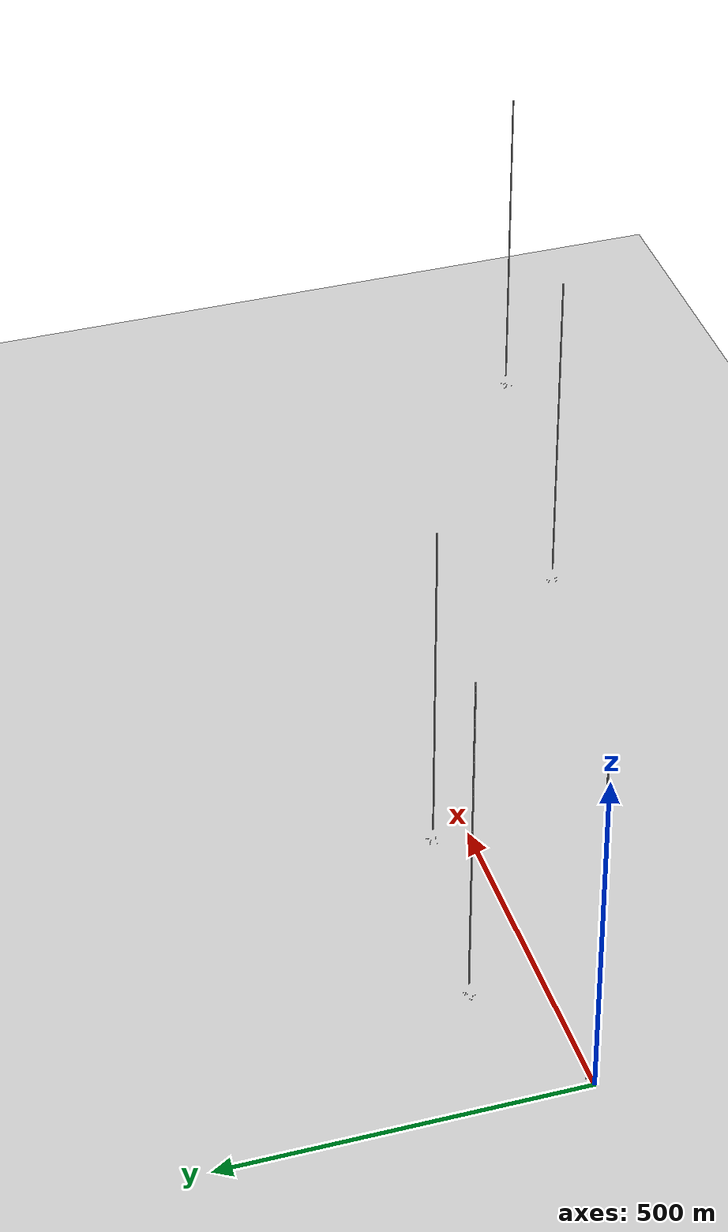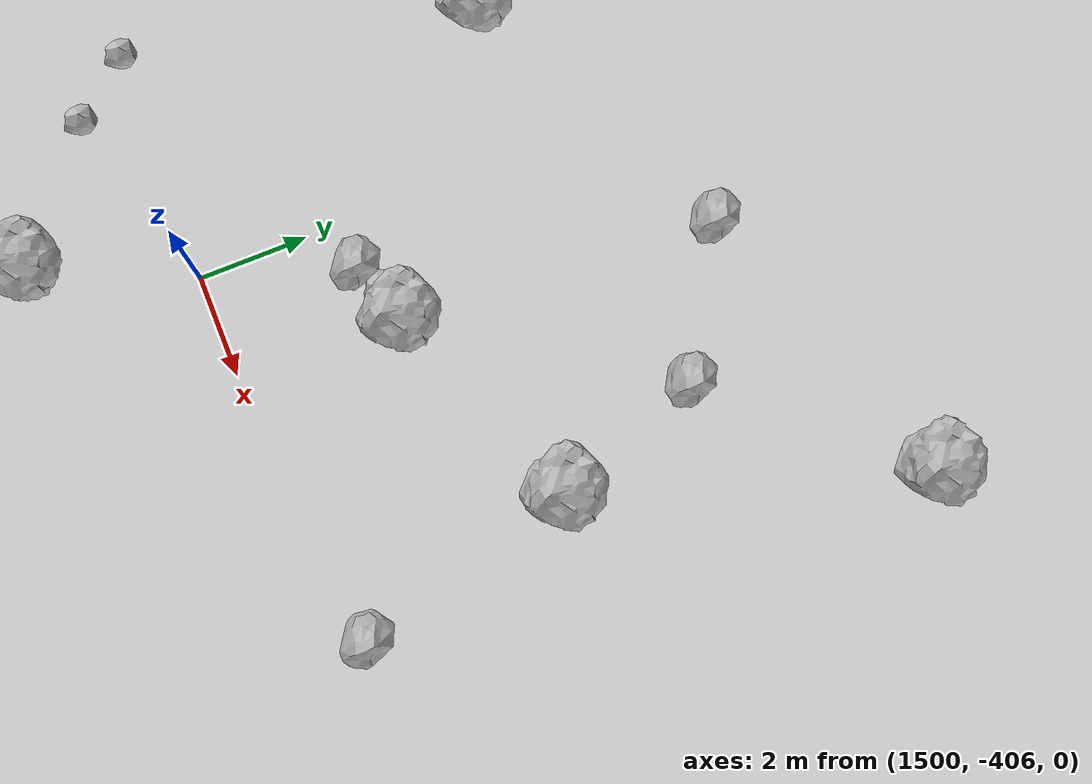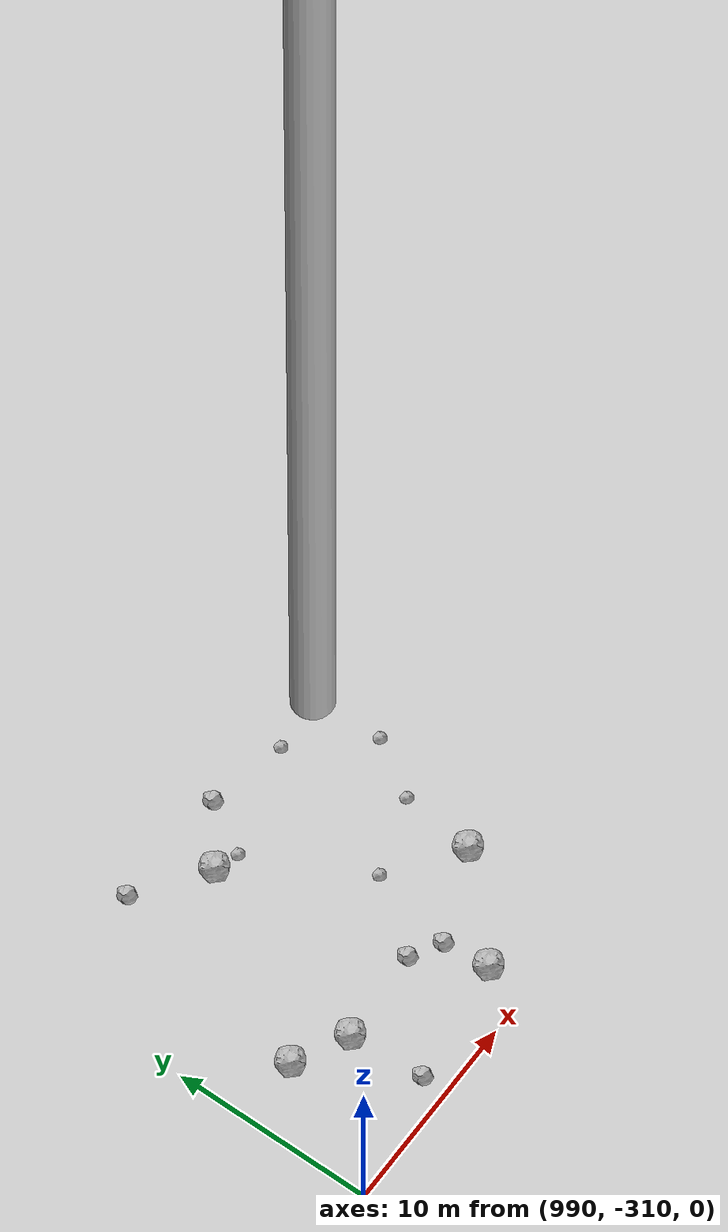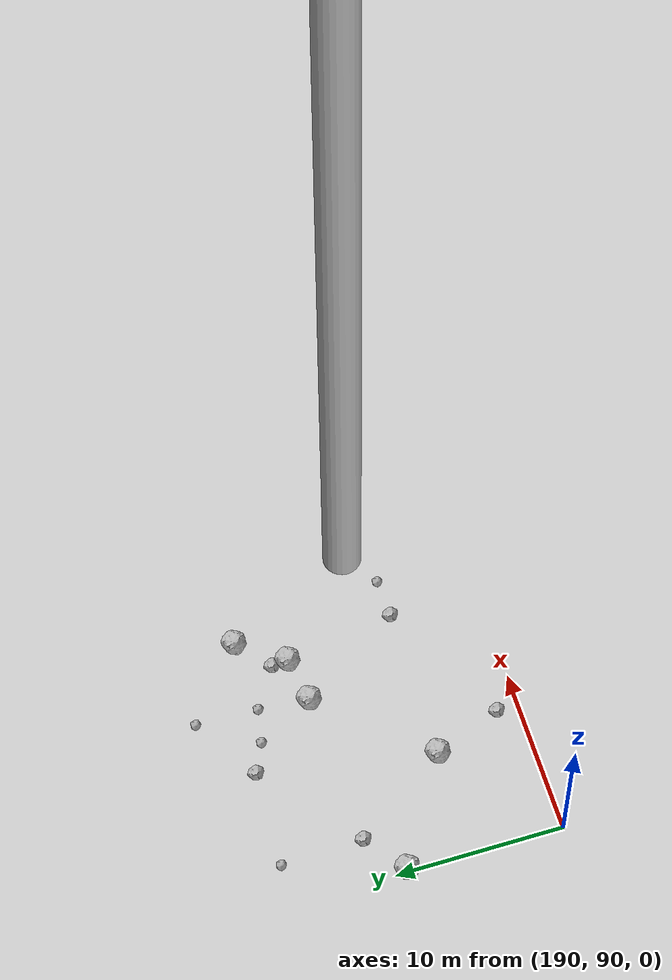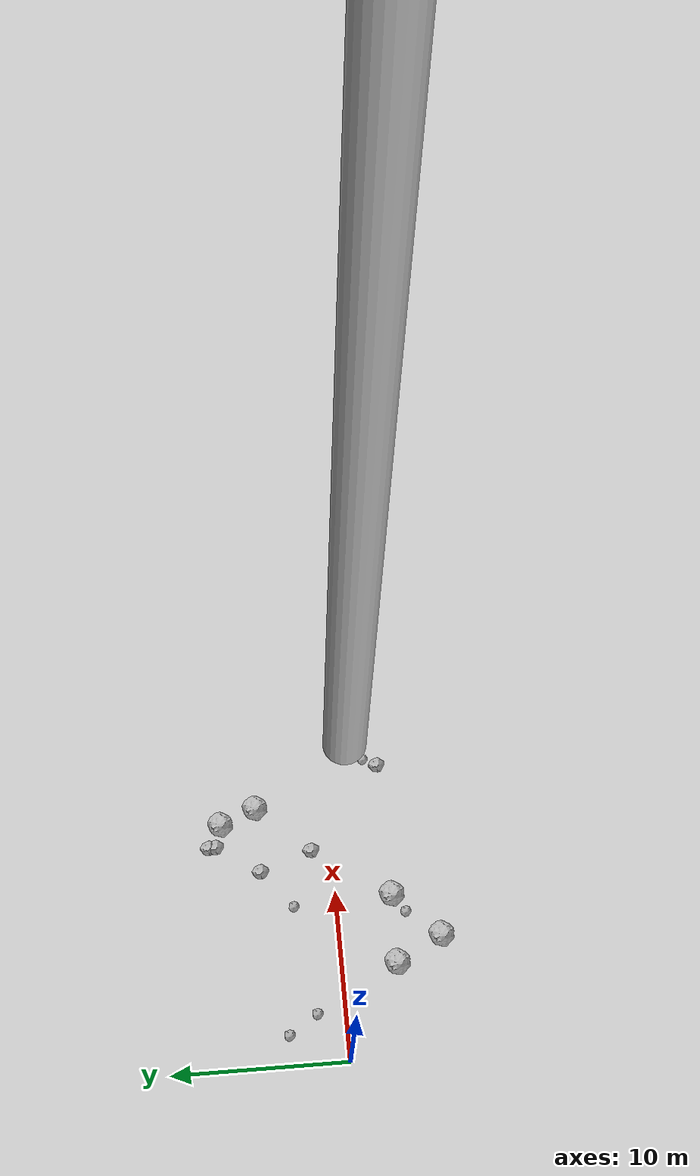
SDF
<?xml version="1.0" ?>
<sdf version="1.6">
  <world name="default">

    <include>
      <uri>model://custom_ground</uri>
    </include>

    <include>
      <uri>model://sun</uri>
    </include>

    <spherical_coordinates>
      <surface_model>EARTH_WGS84</surface_model>
      <latitude_deg>38.161479</latitude_deg>
      <longitude_deg>-122.454630</longitude_deg>
      <elevation>488.0</elevation>
      <heading_deg>90</heading_deg>
    </spherical_coordinates>

    <model name="rock1_0_0">
      <include>
        <uri>model://rock1</uri>
        <pose>6.874993899344233 -5.798928149861309 0.5 0 0 0</pose>
      </include>
    </model>
    <model name="rock1_0_1">
      <include>
        <uri>model://rock1</uri>
        <pose>14.53478975635541 6.452123087397407 0.5 0 0 0</pose>
      </include>
    </model>
    <model name="rock1_0_2">
      <include>
        <uri>model://rock1</uri>
        <pose>5.432593055438839 -3.120534153947558 0.5 0 0 0</pose>
      </include>
    </model>
    <model name="rock1_0_3">
      <include>
        <uri>model://rock1</uri>
        <pose>15.437798759536083 4.3580750712431495 0.5 0 0 0</pose>
      </include>
    </model>
    <model name="rock1_0_4">
      <include>
        <uri>model://rock1</uri>
        <pose>9.494322033842042 -3.21328302534178 0.5 0 0 0</pose>
      </include>
    </model>
    <model name="rock2_0_0">
      <include>
        <uri>model://rock2</uri>
        <pose>13.15159978584597 7.222753185432055 0.3 0 0 0</pose>
      </include>
    </model>
    <model name="rock2_0_1">
      <include>
        <uri>model://rock2</uri>
        <pose>11.456423304244526 4.2664020613207505 0.3 0 0 0</pose>
      </include>
    </model>
    <model name="rock2_0_2">
      <include>
        <uri>model://rock2</uri>
        <pose>13.18285730199162 6.814760559990315 0.3 0 0 0</pose>
      </include>
    </model>
    <model name="rock2_0_3">
      <include>
        <uri>model://rock2</uri>
        <pose>12.564167683776699 1.2208459028298932 0.3 0 0 0</pose>
      </include>
    </model>
    <model name="rock2_0_4">
      <include>
        <uri>model://rock2</uri>
        <pose>17.752834963854426 -3.155375478628506 0.3 0 0 0</pose>
      </include>
    </model>
    <model name="rock3_0_0">
      <include>
        <uri>model://rock3</uri>
        <pose>2.805865332415851 1.5994187662515387 0.2 0 0 0</pose>
      </include>
    </model>
    <model name="rock3_0_1">
      <include>
        <uri>model://rock3</uri>
        <pose>18.196208178430574 -2.385392910425976 0.2 0 0 0</pose>
      </include>
    </model>
    <model name="rock3_0_2">
      <include>
        <uri>model://rock3</uri>
        <pose>1.7177478214862596 3.2429719250795497 0.2 0 0 0</pose>
      </include>
    </model>
    <model name="rock3_0_3">
      <include>
        <uri>model://rock3</uri>
        <pose>9.179652493017043 2.4561768592707995 0.2 0 0 0</pose>
      </include>
    </model>
    <model name="rock3_0_4">
      <include>
        <uri>model://rock3</uri>
        <pose>8.418333932414608 -3.9669121643664713 0.2 0 0 0</pose>
      </include>
    </model>
    <model name="rock1_1_0">
      <include>
        <uri>model://rock1</uri>
        <pose>196.4979247313359 95.4528687213353 0.5 0 0 0</pose>
      </include>
    </model>
    <model name="rock1_1_1">
      <include>
        <uri>model://rock1</uri>
        <pose>206.68880858206077 104.7228990108667 0.5 0 0 0</pose>
      </include>
    </model>
    <model name="rock1_1_2">
      <include>
        <uri>model://rock1</uri>
        <pose>201.9424680282782 101.54483244536883 0.5 0 0 0</pose>
      </include>
    </model>
    <model name="rock1_1_3">
      <include>
        <uri>model://rock1</uri>
        <pose>190.19164571219048 99.29750216157731 0.5 0 0 0</pose>
      </include>
    </model>
    <model name="rock1_1_4">
      <include>
        <uri>model://rock1</uri>
        <pose>204.72165485293468 102.01752589914304 0.5 0 0 0</pose>
      </include>
    </model>
    <model name="rock2_1_0">
      <include>
        <uri>model://rock2</uri>
        <pose>204.65019012514105 102.98630408742545 0.3 0 0 0</pose>
      </include>
    </model>
    <model name="rock2_1_1">
      <include>
        <uri>model://rock2</uri>
        <pose>198.01680926727153 91.34893016027593 0.3 0 0 0</pose>
      </include>
    </model>
    <model name="rock2_1_2">
      <include>
        <uri>model://rock2</uri>
        <pose>205.7907785542524 95.37160491281348 0.3 0 0 0</pose>
      </include>
    </model>
    <model name="rock2_1_3">
      <include>
        <uri>model://rock2</uri>
        <pose>192.6221286793998 101.12991230607929 0.3 0 0 0</pose>
      </include>
    </model>
    <model name="rock2_1_4">
      <include>
        <uri>model://rock2</uri>
        <pose>198.34490462319266 105.79464779645794 0.3 0 0 0</pose>
      </include>
    </model>
    <model name="rock3_1_0">
      <include>
        <uri>model://rock3</uri>
        <pose>200.0911170089296 104.92587518577191 0.2 0 0 0</pose>
      </include>
    </model>
    <model name="rock3_1_1">
      <include>
        <uri>model://rock3</uri>
        <pose>202.18308817460522 104.512834790218 0.2 0 0 0</pose>
      </include>
    </model>
    <model name="rock3_1_2">
      <include>
        <uri>model://rock3</uri>
        <pose>202.27983063271247 108.2463621036266 0.2 0 0 0</pose>
      </include>
    </model>
    <model name="rock3_1_3">
      <include>
        <uri>model://rock3</uri>
        <pose>192.4730395770218 105.98105176208362 0.2 0 0 0</pose>
      </include>
    </model>
    <model name="rock3_1_4">
      <include>
        <uri>model://rock3</uri>
        <pose>208.13301106774085 95.41007239345609 0.2 0 0 0</pose>
      </include>
    </model>
    <model name="rock1_2_0">
      <include>
        <uri>model://rock1</uri>
        <pose>505.2858084734786 44.50686437443466 0.5 0 0 0</pose>
      </include>
    </model>
    <model name="rock1_2_1">
      <include>
        <uri>model://rock1</uri>
        <pose>492.4348211112001 55.984048006433056 0.5 0 0 0</pose>
      </include>
    </model>
    <model name="rock1_2_2">
      <include>
        <uri>model://rock1</uri>
        <pose>505.6448524317413 58.00694851223411 0.5 0 0 0</pose>
      </include>
    </model>
    <model name="rock1_2_3">
      <include>
        <uri>model://rock1</uri>
        <pose>504.8690009968793 55.22718889893515 0.5 0 0 0</pose>
      </include>
    </model>
    <model name="rock1_2_4">
      <include>
        <uri>model://rock1</uri>
        <pose>497.26550118257967 54.75990223633545 0.5 0 0 0</pose>
      </include>
    </model>
    <model name="rock2_2_0">
      <include>
        <uri>model://rock2</uri>
        <pose>502.5571688529093 43.76138865735284 0.3 0 0 0</pose>
      </include>
    </model>
    <model name="rock2_2_1">
      <include>
        <uri>model://rock2</uri>
        <pose>502.289429504602 44.97112258102818 0.3 0 0 0</pose>
      </include>
    </model>
    <model name="rock2_2_2">
      <include>
        <uri>model://rock2</uri>
        <pose>496.12535677141 45.282678879287246 0.3 0 0 0</pose>
      </include>
    </model>
    <model name="rock2_2_3">
      <include>
        <uri>model://rock2</uri>
        <pose>491.73954905690476 46.489214102153305 0.3 0 0 0</pose>
      </include>
    </model>
    <model name="rock2_2_4">
      <include>
        <uri>model://rock2</uri>
        <pose>500.58856963117955 52.6120084960436 0.3 0 0 0</pose>
      </include>
    </model>
    <model name="rock3_2_0">
      <include>
        <uri>model://rock3</uri>
        <pose>495.34221013147095 55.09065315836624 0.2 0 0 0</pose>
      </include>
    </model>
    <model name="rock3_2_1">
      <include>
        <uri>model://rock3</uri>
        <pose>494.2122795148677 42.6284844813059 0.2 0 0 0</pose>
      </include>
    </model>
    <model name="rock3_2_2">
      <include>
        <uri>model://rock3</uri>
        <pose>500.0503186122869 45.12096305574341 0.2 0 0 0</pose>
      </include>
    </model>
    <model name="rock3_2_3">
      <include>
        <uri>model://rock3</uri>
        <pose>505.62899558297005 52.381978928212675 0.2 0 0 0</pose>
      </include>
    </model>
    <model name="rock3_2_4">
      <include>
        <uri>model://rock3</uri>
        <pose>505.49888075017583 52.996129376352734 0.2 0 0 0</pose>
      </include>
    </model>
    <model name="rock1_3_0">
      <include>
        <uri>model://rock1</uri>
        <pose>1002.3776141086838 -307.9213976641278 0.5 0 0 0</pose>
      </include>
    </model>
    <model name="rock1_3_1">
      <include>
        <uri>model://rock1</uri>
        <pose>1006.6821950683056 -303.7081924381964 0.5 0 0 0</pose>
      </include>
    </model>
    <model name="rock1_3_2">
      <include>
        <uri>model://rock1</uri>
        <pose>999.1387145817621 -295.14361535959 0.5 0 0 0</pose>
      </include>
    </model>
    <model name="rock1_3_3">
      <include>
        <uri>model://rock1</uri>
        <pose>993.3114622357806 -303.6295642221579 0.5 0 0 0</pose>
      </include>
    </model>
    <model name="rock1_3_4">
      <include>
        <uri>model://rock1</uri>
        <pose>995.9755016080178 -304.97074063346923 0.5 0 0 0</pose>
      </include>
    </model>
    <model name="rock2_3_0">
      <include>
        <uri>model://rock2</uri>
        <pose>1000.6425812196265 -304.6795307558219 0.3 0 0 0</pose>
      </include>
    </model>
    <model name="rock2_3_1">
      <include>
        <uri>model://rock2</uri>
        <pose>996.2212819666613 -308.69870748376104 0.3 0 0 0</pose>
      </include>
    </model>
    <model name="rock2_3_2">
      <include>
        <uri>model://rock2</uri>
        <pose>995.7443552535849 -292.74376430067053 0.3 0 0 0</pose>
      </include>
    </model>
    <model name="rock2_3_3">
      <include>
        <uri>model://rock2</uri>
        <pose>1002.1536299337869 -305.56507679728935 0.3 0 0 0</pose>
      </include>
    </model>
    <model name="rock2_3_4">
      <include>
        <uri>model://rock2</uri>
        <pose>1001.8600829019306 -293.0021803971366 0.3 0 0 0</pose>
      </include>
    </model>
    <model name="rock3_3_0">
      <include>
        <uri>model://rock3</uri>
        <pose>1003.2281955248495 -301.2845239160505 0.2 0 0 0</pose>
      </include>
    </model>
    <model name="rock3_3_1">
      <include>
        <uri>model://rock3</uri>
        <pose>1005.874772876746 -293.87576660761596 0.2 0 0 0</pose>
      </include>
    </model>
    <model name="rock3_3_2">
      <include>
        <uri>model://rock3</uri>
        <pose>1008.8779543923442 -297.2115399626744 0.2 0 0 0</pose>
      </include>
    </model>
    <model name="rock3_3_3">
      <include>
        <uri>model://rock3</uri>
        <pose>1000.33608704145 -295.54865993592637 0.2 0 0 0</pose>
      </include>
    </model>
    <model name="rock3_3_4">
      <include>
        <uri>model://rock3</uri>
        <pose>1007.1118919755658 -299.97955170596913 0.2 0 0 0</pose>
      </include>
    </model>
    <model name="rock1_4_0">
      <include>
        <uri>model://rock1</uri>
        <pose>1498.7198393113451 -408.76003661832937 0.5 0 0 0</pose>
      </include>
    </model>
    <model name="rock1_4_1">
      <include>
        <uri>model://rock1</uri>
        <pose>1506.3073071504566 -401.60606641711104 0.5 0 0 0</pose>
      </include>
    </model>
    <model name="rock1_4_2">
      <include>
        <uri>model://rock1</uri>
        <pose>1508.449241325373 -395.64487298660816 0.5 0 0 0</pose>
      </include>
    </model>
    <model name="rock1_4_3">
      <include>
        <uri>model://rock1</uri>
        <pose>1502.2662866937287 -403.00085018423556 0.5 0 0 0</pose>
      </include>
    </model>
    <model name="rock1_4_4">
      <include>
        <uri>model://rock1</uri>
        <pose>1496.8607183198055 -399.36768395050035 0.5 0 0 0</pose>
      </include>
    </model>
    <model name="rock2_4_0">
      <include>
        <uri>model://rock2</uri>
        <pose>1507.2455467360599 -405.52077875649354 0.3 0 0 0</pose>
      </include>
    </model>
    <model name="rock2_4_1">
      <include>
        <uri>model://rock2</uri>
        <pose>1505.3128380344783 -398.82052335927347 0.3 0 0 0</pose>
      </include>
    </model>
    <model name="rock2_4_2">
      <include>
        <uri>model://rock2</uri>
        <pose>1500.9478836370483 -403.36251975534765 0.3 0 0 0</pose>
      </include>
    </model>
    <model name="rock2_4_3">
      <include>
        <uri>model://rock2</uri>
        <pose>1502.6838258107878 -397.12397037596213 0.3 0 0 0</pose>
      </include>
    </model>
    <model name="rock2_4_4">
      <include>
        <uri>model://rock2</uri>
        <pose>1498.064264032749 -409.49977147142283 0.3 0 0 0</pose>
      </include>
    </model>
    <model name="rock3_4_0">
      <include>
        <uri>model://rock3</uri>
        <pose>1495.1383733070768 -405.92354538297116 0.2 0 0 0</pose>
      </include>
    </model>
    <model name="rock3_4_1">
      <include>
        <uri>model://rock3</uri>
        <pose>1496.1765030642991 -407.0276635481058 0.2 0 0 0</pose>
      </include>
    </model>
    <model name="rock3_4_2">
      <include>
        <uri>model://rock3</uri>
        <pose>1495.174865528372 -396.31234493424046 0.2 0 0 0</pose>
      </include>
    </model>
    <model name="rock3_4_3">
      <include>
        <uri>model://rock3</uri>
        <pose>1495.2995699202957 -396.3342045454257 0.2 0 0 0</pose>
      </include>
    </model>
    <model name="rock3_4_4">
      <include>
        <uri>model://rock3</uri>
        <pose>1501.5048404991323 -403.13269041482323 0.2 0 0 0</pose>
      </include>
    </model>

    <model name="cylinder_1">
      <static>true</static>
      <link name="link">
        <visual name="visual">
          <geometry>
            <cylinder>
              <radius>1</radius>
              <length>500</length>
            </cylinder>
          </geometry>
        </visual>
      </link>
      <pose>10 0 270 0 0 0</pose>
    </model>

    <model name="cylinder_2">
      <static>true</static>
      <link name="link">
        <visual name="visual">
          <geometry>
            <cylinder>
              <radius>1</radius>
              <length>500</length>
            </cylinder>
          </geometry>
        </visual>
      </link>
      <pose>200 100 270 0 0 0</pose>
    </model>

    <model name="cylinder_3">
      <static>true</static>
      <link name="link">
        <visual name="visual">
          <geometry>
            <cylinder>
              <radius>1</radius>
              <length>500</length>
            </cylinder>
          </geometry>
        </visual>
      </link>
      <pose>500 50 270 0 0 0</pose>
    </model>

    <model name="cylinder_4">
      <static>true</static>
      <link name="link">
        <visual name="visual">
          <geometry>
            <cylinder>
              <radius>1</radius>
              <length>500</length>
            </cylinder>
          </geometry>
        </visual>
      </link>
      <pose>1000 -300 270 0 0 0</pose>
    </model>

    <model name="cylinder_5">
      <static>true</static>
      <link name="link">
        <visual name="visual">
          <geometry>
            <cylinder>
              <radius>1</radius>
              <length>500</length>
            </cylinder>
          </geometry>
        </visual>
      </link>
      <pose>1500 -400 270 0 0 0</pose>
    </model>

  </world>
</sdf>

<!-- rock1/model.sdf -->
<sdf version="1.6">
  <model name="rock1">
    <static>true</static> <!-- Set to true if the model should not move -->
    <pose>0 0 0 0 0 0</pose>

    <!--z offset is 0.5 for full scale-->

    <link name="link">
      <collision name="rock1_collision">
        <geometry>
          <mesh>
            <uri>model://meshes/rock1.dae</uri>
          </mesh>
        </geometry>
      </collision>
      <visual name="rock1_visual">
        <geometry>
          <mesh>
            <uri>model://meshes/rock1.dae</uri>
          </mesh>
        </geometry>
        <material>
          <script>
            <uri>model://materials/scripts/sand_pebbles.material</uri>
            <name>custom_ground/Image</name>
          </script>
        </material>
      </visual>
    </link>
  </model>
</sdf>

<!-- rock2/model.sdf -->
<sdf version="1.6">
  <model name="rock2">
    <static>true</static> <!-- Set to true if the model should not move -->
    <pose>0 0 0 0 0 0</pose>

    <!--z offset is 0.3 for full scale-->

    <link name="link">
      <collision name="rock2_collision">
        <geometry>
          <mesh>
            <uri>model://meshes/rock2.dae</uri>
          </mesh>
        </geometry>
      </collision>
      <visual name="rock2_visual">
        <geometry>
          <mesh>
            <uri>model://meshes/rock2.dae</uri>
          </mesh>
        </geometry>
        <material>
          <script>
            <uri>model://materials/scripts/sand_pebbles.material</uri>
            <name>custom_ground/Image</name>
          </script>
        </material>
      </visual>
    </link>
  </model>
</sdf>

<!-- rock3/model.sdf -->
<sdf version="1.6">
  <model name="rock3">
    <static>true</static> <!-- Set to true if the model should not move -->
    <pose>0 0 0 0 0 0</pose>

    <!--z offset is 0.2 for full scale-->

    <link name="link">
      <collision name="rock3_collision">
        <geometry>
          <mesh>
            <uri>model://meshes/rock3.dae</uri>
          </mesh>
        </geometry>
      </collision>
      <visual name="rock3_visual">
        <geometry>
          <mesh>
            <uri>model://meshes/rock3.dae</uri>
          </mesh>
        </geometry>
        <material>
          <script>
            <uri>model://materials/scripts/sand_pebbles.material</uri>
            <name>custom_ground/Image</name>
          </script>
        </material>
      </visual>
    </link>
  </model>
</sdf>

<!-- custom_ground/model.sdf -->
<sdf version="1.6">
  <model name="custom_ground">
    <static>true</static> <!-- Ground is static and immovable -->
    <link name="ground_link">
      <pose>240 0 0 0 0 0</pose> <!-- Position and orientation relative to the world -->
      <!-- Visual Representation -->
      <visual name="ground_visual">
        <geometry>
          <plane>
            <normal>0 0 1</normal> <!-- Upward facing plane -->
            <size>500 500</size> <!-- Size of the plane -->
          </plane>
        </geometry>
        <material>
          <script>
            <uri>model://materials/scripts/sand_pebbles.material</uri>
            <name>custom_ground/Image</name>
          </script>
        </material>
      </visual>

      <!-- Collision Representation -->
      <collision name="ground_collision">
        <geometry>
          <plane>
            <normal>0 0 1</normal>
            <size>100 100</size>
          </plane>
        </geometry>
      </collision>

    </link>
  </model>
</sdf>
